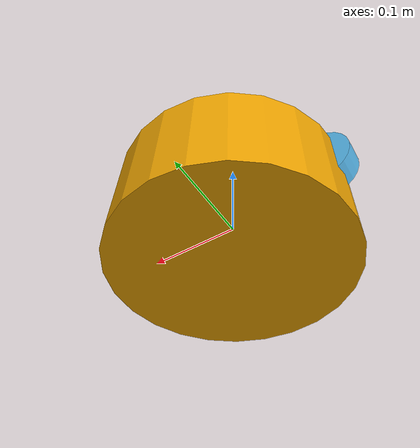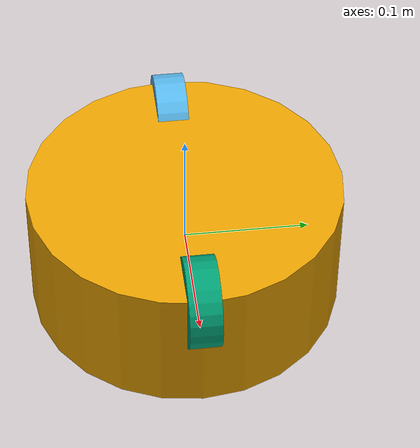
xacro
<?xml version="1.0"?>
<robot name="edy_mobile" xmlns:xacro="http://www.ros.org/wiki/xacro">

  <!-- Constants -->
  <xacro:property name="base_radius" value="0.125" />
  <xacro:property name="base_height" value="0.11" />
  <xacro:property name="wheel_radius" value="0.035" />
  <xacro:property name="wheel_width" value="0.025" />
  <xacro:property name="wheel_separation" value="0.210" />
  <xacro:property name="mass_base" value="2.0" />
  <xacro:property name="gravitational_offset" value="0.025" />

  <!-- Base Link -->
  <link name="base_link">
    <visual>
      <geometry>
        <cylinder radius="${base_radius}" length="${base_height}" />
      </geometry>
    </visual>
    <collision>
      <geometry>
        <cylinder radius="${base_radius}" length="${base_height}" />
      </geometry>
    </collision>
    <inertial>
      <origin xyz="0 0 ${base_height / 2 - gravitational_offset}" rpy="0 0 0" />
      <mass value="${mass_base}" />
      <inertia ixx="1" ixy="0" ixz="0" iyy="1" iyz="0" izz="1" />
    </inertial>
  </link>

  <!-- Wheel Macro -->
  <xacro:macro name="wheel" params="name xpos">
    <link name="${name}">
      <visual>
        <origin xyz="0 0 0" rpy="1.570795 0 0" />
        <geometry>
          <cylinder radius="${wheel_radius}" length="${wheel_width}" />
        </geometry>
      </visual>
      <collision>
        <origin xyz="0 0 0" rpy="1.570795 0 0" />
        <geometry>
          <cylinder radius="${wheel_radius}" length="${wheel_width}" />
        </geometry>
      </collision>
      <inertial>
        <origin xyz="0 0 0" rpy="0 0 0" />
        <mass value="0.5" />
        <inertia ixx="1" ixy="0" ixz="0" iyy="1" iyz="0" izz="1" />
      </inertial>
    </link>
    <joint name="${name}_joint" type="continuous">
      <parent link="base_link" />
      <child link="${name}" />
      <origin xyz="${xpos} 0 ${wheel_radius}" rpy="0 0 0" />
      <axis xyz="0 1 0" />
      <dynamics friction="0.5" />
    </joint>
  </xacro:macro>

  <!-- Left Wheel -->
  <xacro:wheel name="left_wheel" xpos="${-wheel_separation / 2}" />

  <!-- Right Wheel -->
  <xacro:wheel name="right_wheel" xpos="${wheel_separation / 2}" />

</robot>
